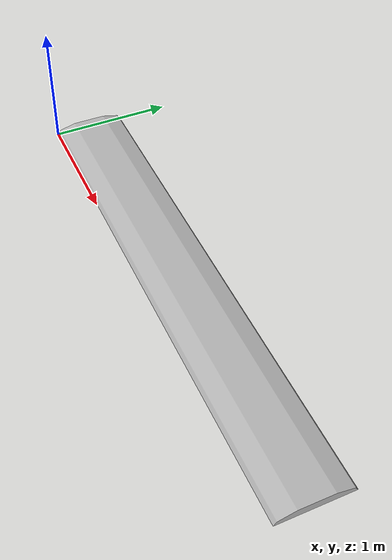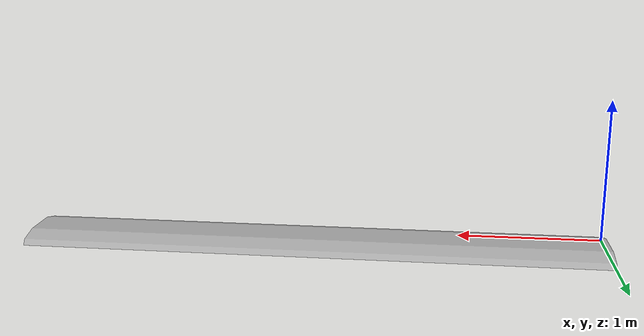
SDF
<?xml version="1.0" ?>
<sdf version="1.6">
  <model name="speed_bump_1">
    <static>true</static>
    <link name="link">
      <collision name="collision">
        <geometry>
          <mesh>
            <uri>model://speed_bump_1//bump_1.dae</uri>
          </mesh>
        </geometry>
        <surface>
          <friction>
            <ode>
              <mu>0.9</mu>
              <mu2>0.6</mu2>
            </ode>
          </friction>
        </surface>
      </collision>
      <visual name="visual">
        <geometry>
          <mesh>
            <uri>model://speed_bump_1//bump_1.dae</uri>
          </mesh>
        </geometry>
      </visual>
    </link>
  </model>
</sdf>
